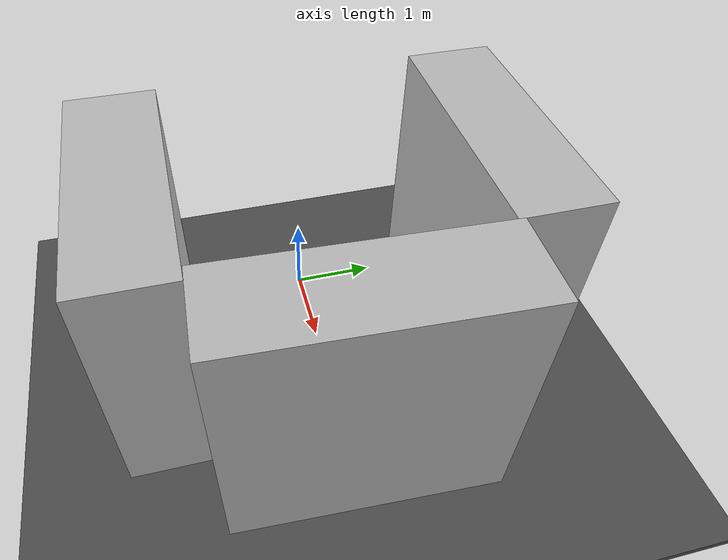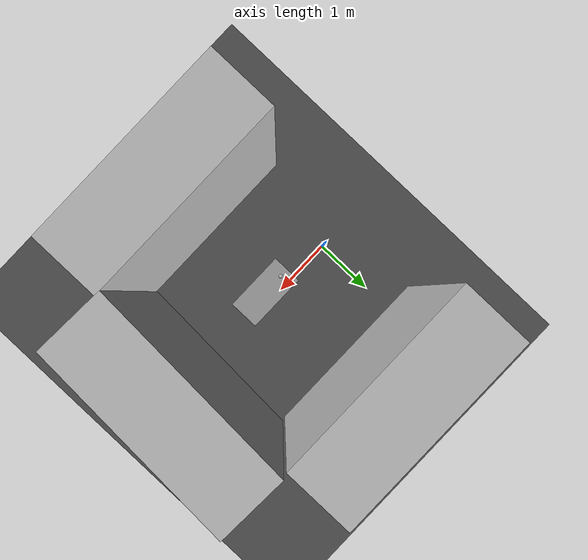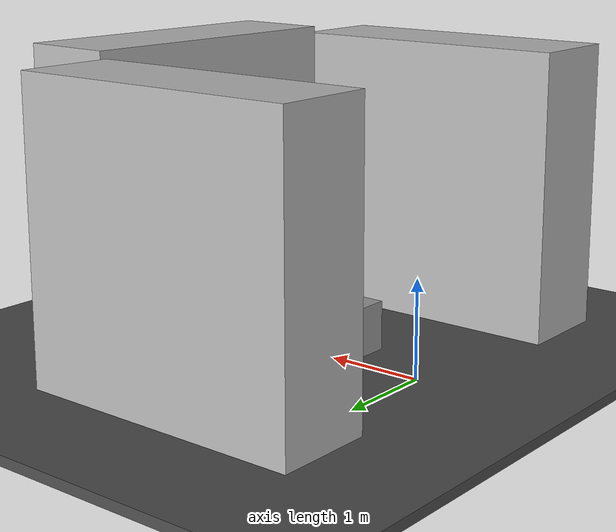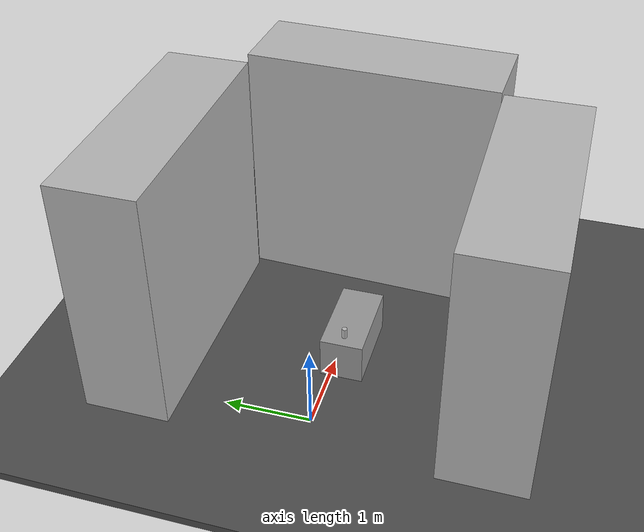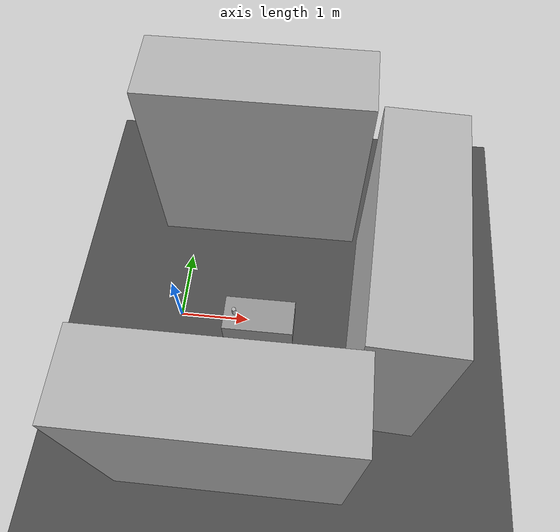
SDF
<sdf version="1.4">
 <world name="default">
  <light name="sun" type="directional">
   <pose>0 0 10 0 -0 0</pose>
   <diffuse>0.8 0.8 0.8 1</diffuse>
   <specular>0.2 0.2 0.2 1</specular>
   <attenuation>
    <range>1000</range>
    <constant>0.9</constant>
    <linear>0.01</linear>
    <quadratic>0.001</quadratic>
   </attenuation>
   <direction>-0.5 0.1 -0.9</direction>
  </light>
  <light name="point_light" type="point">
   <pose>0 0 10 0 -0 0</pose>
   <diffuse>0.8 0.8 0.8 1</diffuse>
   <specular>0.2 0.2 0.2 1</specular>
   <attenuation>
    <range>1000</range>
    <constant>0.9</constant>
    <linear>0.01</linear>
    <quadratic>0.001</quadratic>
   </attenuation>
   <direction>-0.5 0.1 -0.9</direction>
  </light>
  <model name="ground_plane">
   <static>1</static>
   <link name="link">
    <collision name="collision">
     <geometry><plane><normal>0 0 1</normal><size>100 100</size></plane></geometry>
     <surface><friction><ode><mu>100</mu><mu2>50</mu2></ode></friction></surface>
    </collision>
    <visual name="visual">
     <cast_shadows>0</cast_shadows>
     <geometry><plane><normal>0 0 1</normal><size>100 100</size></plane></geometry>
     <material>
      <script><uri>file://media/materials/scripts/gazebo.material</uri><name>Gazebo/Grey</name></script>
     </material>
    </visual>
    <velocity_decay><linear>0</linear><angular>0</angular></velocity_decay>
   </link>
  </model>
  <physics type="ode">
   <gravity>0 0 -9.81</gravity>
   <ode>
    <solver><type>quick</type><iters>100</iters><precon_iters>0</precon_iters><sor>1</sor></solver>
    <constraints>
     <cfm>0</cfm>
     <erp>0.5</erp>
     <contact_max_correcting_vel>1000</contact_max_correcting_vel>
     <contact_surface_layer>0</contact_surface_layer>
    </constraints>
   </ode>
   <max_step_size>0.001</max_step_size>
   <real_time_factor>1</real_time_factor>
   <real_time_update_rate>1000</real_time_update_rate>
  </physics>
  <scene><ambient>0.4 0.4 0.4 1</ambient><background>0.7 0.7 0.7 1</background><shadows>1</shadows></scene>
  <spherical_coordinates>
   <surface_model>EARTH_WGS84</surface_model>
   <latitude_deg>0</latitude_deg>
   <longitude_deg>0</longitude_deg>
   <elevation>0</elevation>
   <heading_deg>0</heading_deg>
  </spherical_coordinates>
  <model name="beer">
   <link name="link">
    <inertial>
     <mass>0.39</mass>
     <inertia><ixx>0.00058</ixx><ixy>0</ixy><ixz>0</ixz><iyy>0.00058</iyy><iyz>0</iyz><izz>0.00019</izz></inertia>
    </inertial>
    <collision name="collision">
     <geometry><cylinder><radius>0.030</radius><length>0.15</length></cylinder></geometry>
    </collision>
    <visual name="visual">
     <geometry><cylinder><radius>0.030</radius><length>0.15</length></cylinder></geometry>
     <material>
      <script>
       <uri>model://beer/materials/scripts</uri>
       <uri>model://beer/materials/textures</uri>
       <name>Beer/Diffuse</name>
      </script>
     </material>
    </visual>
    <velocity_decay><linear>0</linear><angular>0</angular></velocity_decay>
   </link>
   <pose>0.85 -0.15 0.6 0.0 0.0 0.0</pose>
   <static>0</static>
  </model>
  <model name="asphalt_plane">
   <static>1</static>
   <link name="link">
    <collision name="collision"><geometry><box><size>20 20 0.1</size></box></geometry></collision>
    <visual name="visual">
     <cast_shadows>0</cast_shadows>
     <geometry><box><size>20 20 0.1</size></box></geometry>
     <material>
      <script>
       <uri>model://asphalt_plane/materials/scripts</uri>
       <uri>model://asphalt_plane/materials/textures</uri>
       <name>vrc/asphalt</name>
      </script>
     </material>
    </visual>
    <velocity_decay><linear>0</linear><angular>0</angular></velocity_decay>
   </link>
   <pose>0.019878 0.053668 0 0 -0 0</pose>
  </model>
  <model name="brick_box_3x1x3">
   <static>1</static>
   <link name="chassis">
    <pose>0 0 1.5 0 -0 0</pose>
    <collision name="collision"><geometry><box><size>3 1 3</size></box></geometry></collision>
    <visual name="visual">
     <geometry><mesh><uri>model://brick_box_3x1x3/meshes/simple_box.dae</uri><scale>3 1 3</scale></mesh></geometry>
     <material>
      <script>
       <uri>model://brick_box_3x1x3/materials/scripts</uri>
       <uri>model://brick_box_3x1x3/materials/textures</uri>
       <name>BrickBox/Diffuse</name>
      </script>
     </material>
    </visual>
    <velocity_decay><linear>0</linear><angular>0</angular></velocity_decay>
   </link>
   <pose>3 0 0.07082 0 -0 1.52823</pose>
  </model>
  <model name="brick_box_3x1x3_0">
   <static>1</static>
   <link name="chassis">
    <pose>0 0 1.5 0 -0 0</pose>
    <collision name="collision"><geometry><box><size>3 1 3</size></box></geometry></collision>
    <visual name="visual">
     <geometry><mesh><uri>model://brick_box_3x1x3/meshes/simple_box.dae</uri><scale>3 1 3</scale></mesh></geometry>
     <material>
      <script>
       <uri>model://brick_box_3x1x3/materials/scripts</uri>
       <uri>model://brick_box_3x1x3/materials/textures</uri>
       <name>BrickBox/Diffuse</name>
      </script>
     </material>
    </visual>
    <velocity_decay><linear>0</linear><angular>0</angular></velocity_decay>
   </link>
   <pose>1 2 0 0 -0 0</pose>
  </model>
  <model name="brick_box_3x1x3_1">
   <static>1</static>
   <link name="chassis">
    <pose>0 0 1.5 0 -0 0</pose>
    <collision name="collision"><geometry><box><size>3 1 3</size></box></geometry></collision>
    <visual name="visual">
     <geometry><mesh><uri>model://brick_box_3x1x3/meshes/simple_box.dae</uri><scale>3 1 3</scale></mesh></geometry>
     <material>
      <script>
       <uri>model://brick_box_3x1x3/materials/scripts</uri>
       <uri>model://brick_box_3x1x3/materials/textures</uri>
       <name>BrickBox/Diffuse</name>
      </script>
     </material>
    </visual>
    <velocity_decay><linear>0</linear><angular>0</angular></velocity_decay>
   </link>
   <pose>1.03886 -1.9888 0 0 -0 0</pose>
  </model>
  <model name="unit_box_2">
   <pose>1.2 -0.15 0.3 0 -0 0</pose>
   <link name="link">
    <inertial>
     <mass>1</mass>
     <inertia><ixx>1</ixx><ixy>0</ixy><ixz>0</ixz><iyy>1</iyy><iyz>0</iyz><izz>1</izz></inertia>
    </inertial>
    <collision name="collision"><geometry><box><size>1 0.5 0.5</size></box></geometry></collision>
    <visual name="visual">
     <geometry><box><size>1 0.5 0.5</size></box></geometry>
     <material>
      <script><uri>file://media/materials/scripts/gazebo.material</uri><name>Gazebo/Grey</name></script>
     </material>
    </visual>
    <velocity_decay><linear>0</linear><angular>0</angular></velocity_decay>
   </link>
   <static>0</static>
  </model>
 </world>
</sdf>
